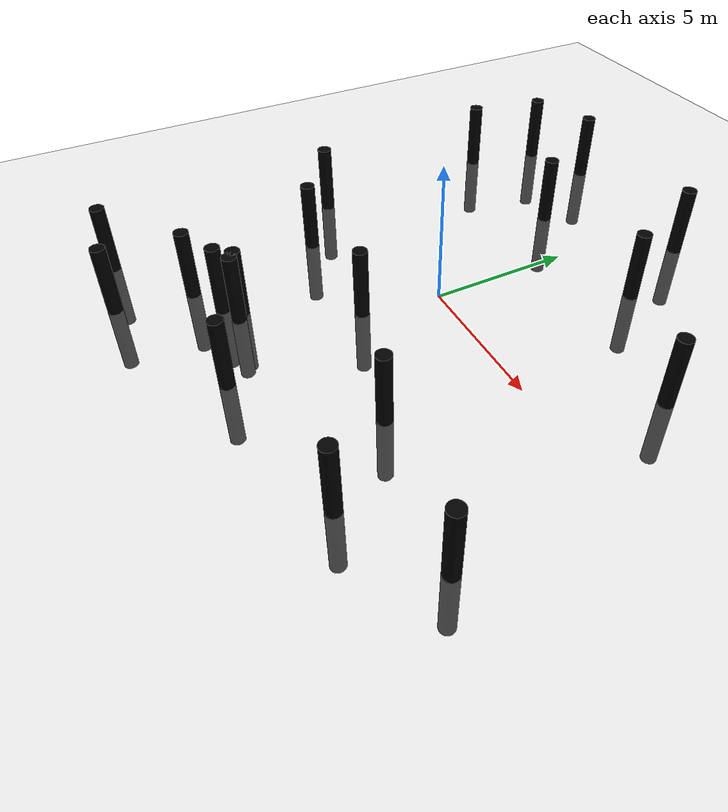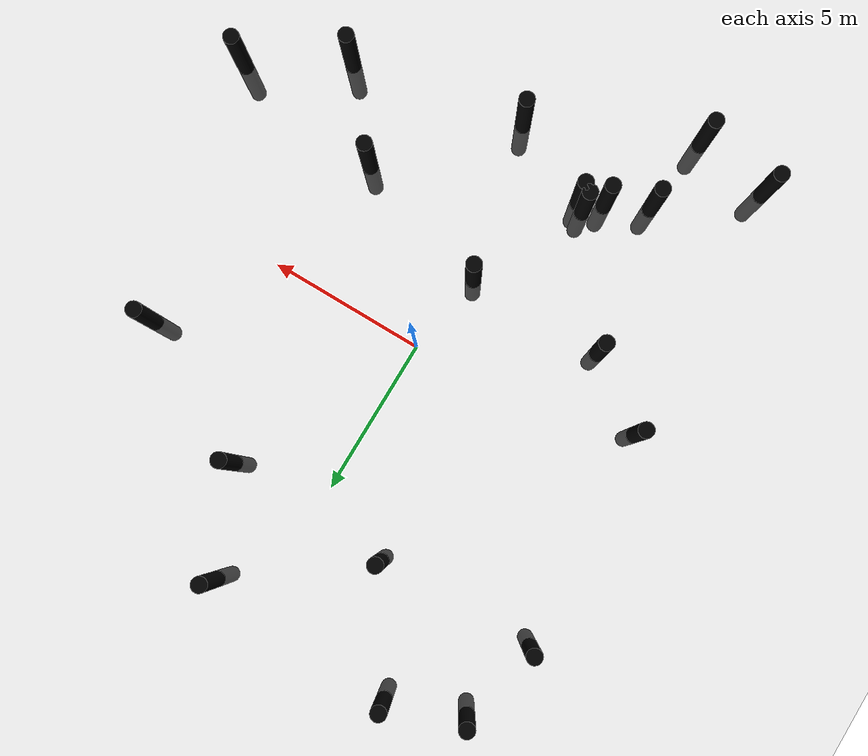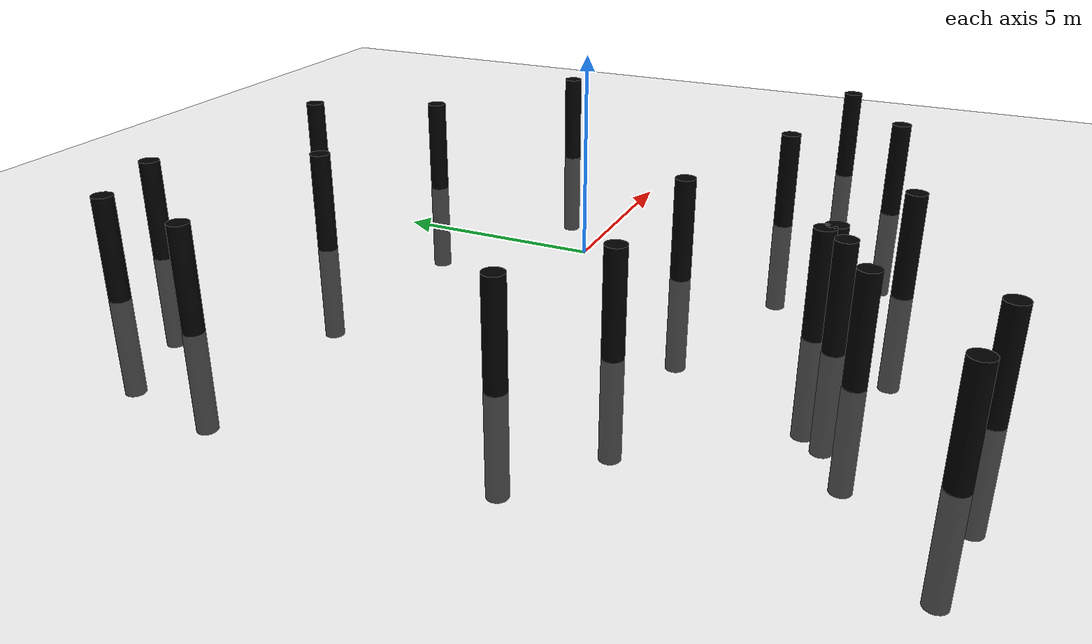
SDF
<?xml version="1.0"?>

<sdf version="1.6">
    <world name="world_low_density">
        <physics name="4ms" type="ignored">
            <max_step_size>0.004</max_step_size>
            <real_time_factor>1.0</real_time_factor>
        </physics>
        <plugin
            filename="ignition-gazebo-physics-system"
            name="ignition::gazebo::systems::Physics">
        </plugin>
        <plugin
            filename="ignition-gazebo-scene-broadcaster-system"
            name="ignition::gazebo::systems::SceneBroadcaster">
        </plugin>
        <plugin
            filename="ignition-gazebo-user-commands-system"
            name="ignition::gazebo::systems::UserCommands">
        </plugin>
        <plugin
            filename="ignition-gazebo-sensors-system"
            name="ignition::gazebo::systems::Sensors">
            <render_engine>ogre2</render_engine>
        </plugin>

        <include>
            <uri>model://ground_plane</uri>
        </include>
        <include>
            <uri>model://pole</uri>
            <name>pole1</name>
            <pose>-7.08 -1.08 0 0 0 0</pose>
        </include>
        <include>
            <uri>model://pole</uri>
            <name>pole2</name>
            <pose>-2.71 -6.74 0 0 0 0</pose>
        </include>
        <include>
            <uri>model://pole</uri>
            <name>pole3</name>
            <pose>-4.0 -7.39 0 0 0 0</pose>
        </include>
        <include>
            <uri>model://pole</uri>
            <name>pole4</name>
            <pose>-2.24 -6.23 0 0 0 0</pose>
        </include>
        <include>
            <uri>model://pole</uri>
            <name>pole5</name>
            <pose>1.53 9.11 0 0 0 0</pose>
        </include>
        <include>
            <uri>model://pole</uri>
            <name>pole6</name>
            <pose>4.14 -4.11 0 0 0 0</pose>
        </include>
        <include>
            <uri>model://pole</uri>
            <name>pole7</name>
            <pose>6.29 -6.62 0 0 0 0</pose>
        </include>
        <include>
            <uri>model://pole</uri>
            <name>pole8</name>
            <pose>2.91 5.87 0 0 0 0</pose>
        </include>
        <include>
            <uri>model://pole</uri>
            <name>pole9</name>
            <pose>-1.98 -6.42 0 0 0 0</pose>
        </include>
        <include>
            <uri>model://pole</uri>
            <name>pole10</name>
            <pose>-2.43 6.12 0 0 0 0</pose>
        </include>
        <include>
            <uri>model://pole</uri>
            <name>pole11</name>
            <pose>-4.32 -9.95 0 0 0 0</pose>
        </include>
        <include>
            <uri>model://pole</uri>
            <name>pole12</name>
            <pose>-6.97 8.69 0 0 0 0</pose>
        </include>
        <include>
            <uri>model://pole</uri>
            <name>pole13</name>
            <pose>-6.74 -9.54 0 0 0 0</pose>
        </include>
        <include>
            <uri>model://pole</uri>
            <name>pole14</name>
            <pose>0.74 -7.67 0 0 0 0</pose>
        </include>
        <include>
            <uri>model://pole</uri>
            <name>pole15</name>
            <pose>-4.62 9.56 0 0 0 0</pose>
        </include>
        <include>
            <uri>model://pole</uri>
            <name>pole16</name>
            <pose>7.29 3.45 0 0 0 0</pose>
        </include>
        <include>
            <uri>model://pole</uri>
            <name>pole17</name>
            <pose>-7.56 6.0 0 0 0 0</pose>
        </include>
        <include>
            <uri>model://pole</uri>
            <name>pole18</name>
            <pose>-0.43 -2.68 0 0 0 0</pose>
        </include>
        <include>
            <uri>model://pole</uri>
            <name>pole19</name>
            <pose>-4.86 -2.66 0 0 0 0</pose>
        </include>
        <include>
            <uri>model://pole</uri>
            <name>pole20</name>
            <pose>9.16 -4.85 0 0 0 0</pose>
        </include>

    </world>
</sdf>

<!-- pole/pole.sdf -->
<sdf version="1.9">
    <model name="pole">
        <link name="pole_link">

            <visual name='visual'>
                <geometry>
                    <cylinder>
                        <radius>0.25</radius>
                        <length>5.0</length>
                    </cylinder>
                </geometry>
                <material>
                    <diffuse>0 0 0 1</diffuse>
                </material>
            </visual>

            <inertial>
                <mass>0.005</mass>
                <inertia>
                    <ixx>8.33e-06</ixx>
                    <ixy>0</ixy>
                    <ixz>0</ixz>
                    <iyy>8.33e-06</iyy>
                    <iyz>0</iyz>
                    <izz>8.33e-06</izz>
                </inertia>
            </inertial>

            <collision name="collision">
                <geometry>
                    <cylinder>
                        <radius>0.25</radius>
                        <length>5.0</length>
                    </cylinder>
                </geometry>
            </collision>
        </link>

    </model>
</sdf>
